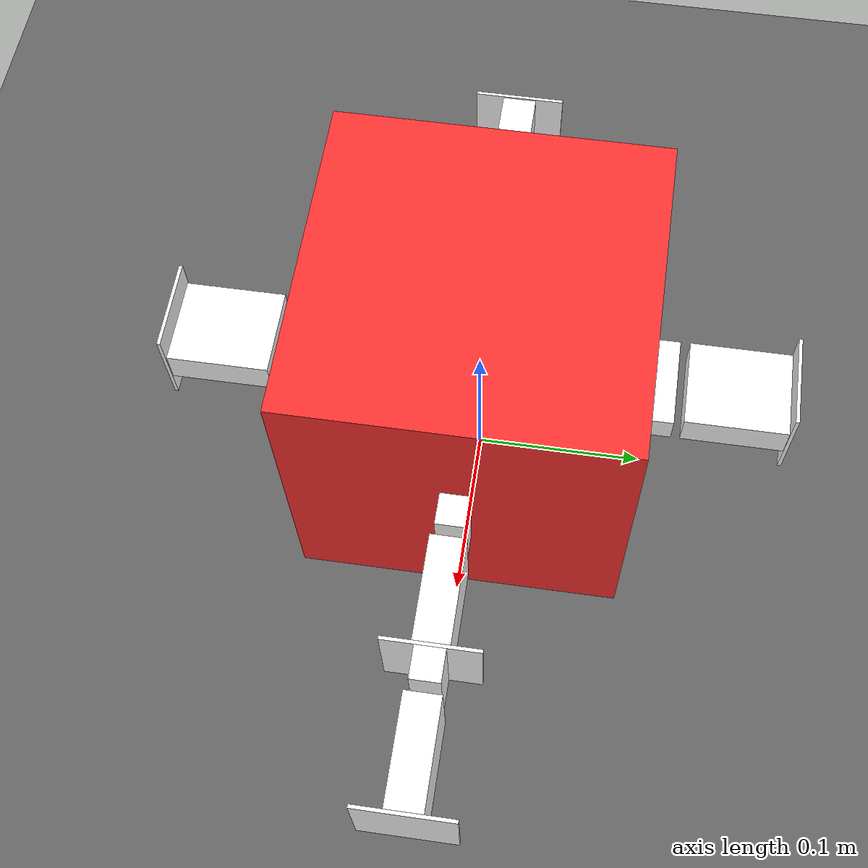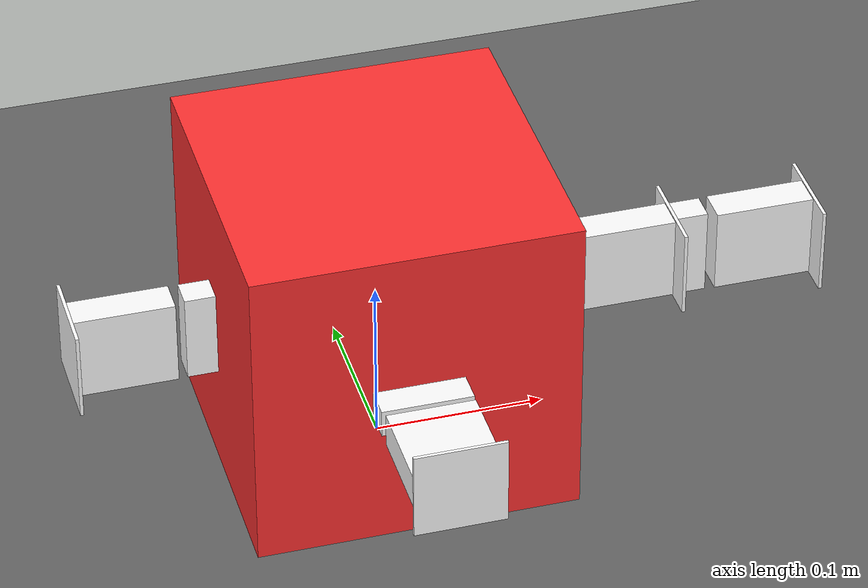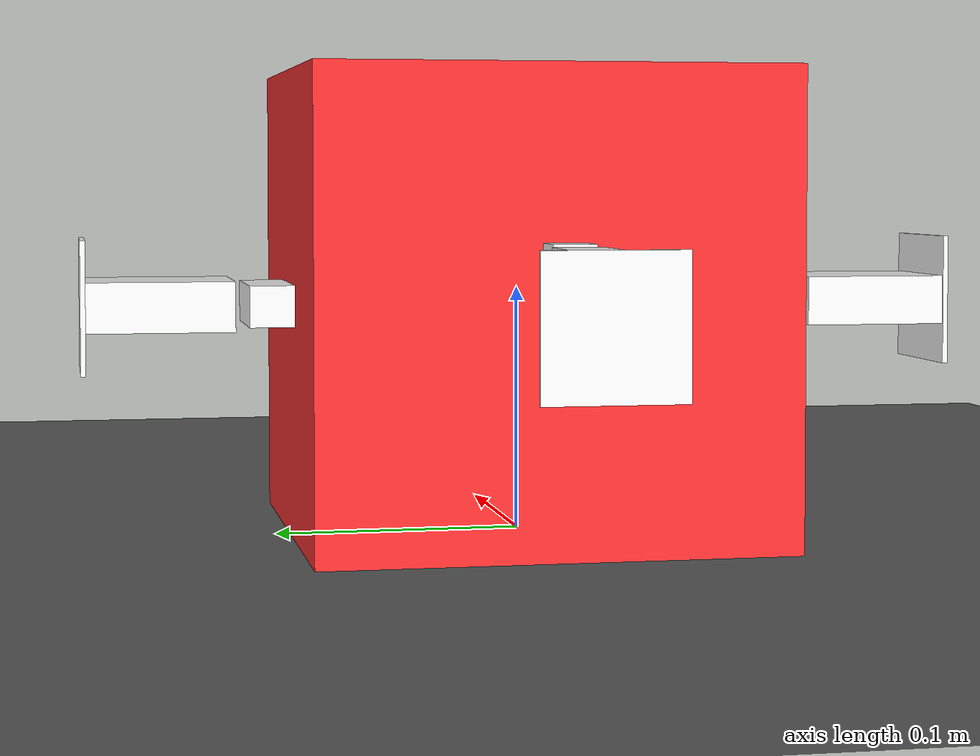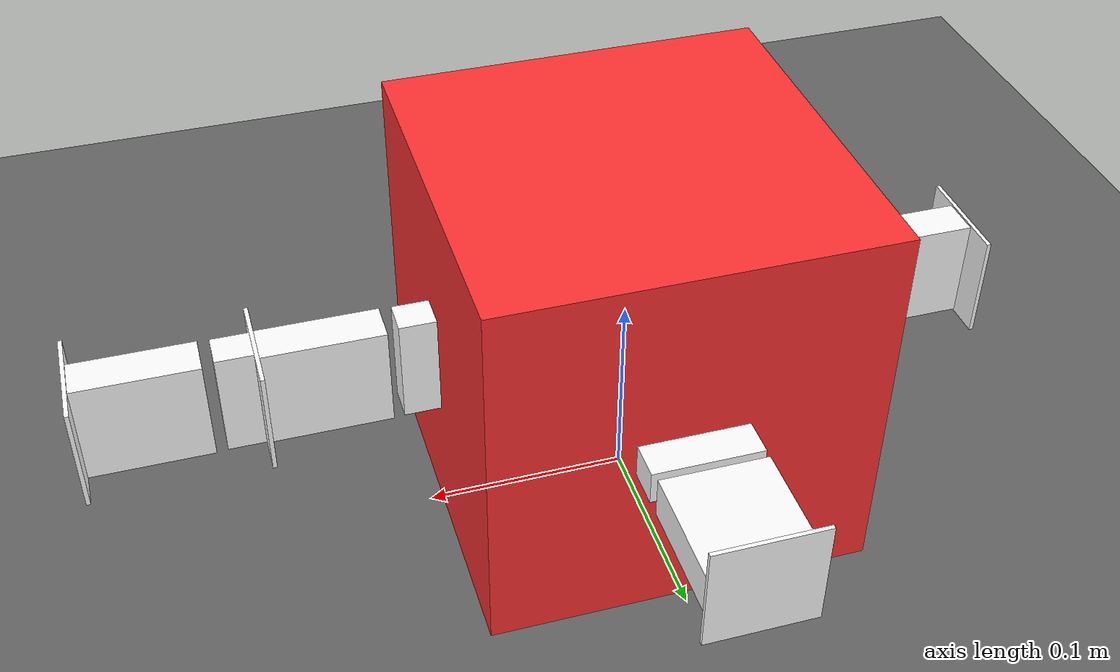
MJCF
<mujoco model="scene">
  <compiler angle="radian" autolimits="true"/>
  <option timestep="0.001" integrator="RK4"/>
  <visual>
    <headlight active="0"/>
  </visual>
  <statistic meansize="0.0646831" extent="2" center="0 0 0"/>
  <default class="main">
    <default class="/"/>
    <default class="mbs0/"/>
    <default class="mbs1/"/>
  </default>
  <asset>
    <material name="heightmap_0_material" class="/" rgba="0.392157 0.392157 0.392157 1"/>
    <material name="mbs1/geom_mbs1_geom0_material" class="mbs1/" rgba="1 0.196078 0.196078 1"/>
    <material name="mbs1/geom_mbs1_geom1_material" class="mbs1/"/>
    <material name="mbs1/geom_mbs1_geom2_material" class="mbs1/"/>
    <material name="mbs1/geom_mbs1_geom3_material" class="mbs1/"/>
    <material name="mbs1/geom_mbs1_geom4_material" class="mbs1/"/>
    <material name="mbs1/geom_mbs1_link0_geom0_material" class="mbs1/"/>
    <material name="mbs1/geom_mbs1_link0_geom1_material" class="mbs1/"/>
    <material name="mbs1/geom_mbs1_link1_geom0_material" class="mbs1/"/>
    <material name="mbs1/geom_mbs1_link1_geom1_material" class="mbs1/"/>
    <material name="mbs1/geom_mbs1_link1_geom2_material" class="mbs1/"/>
    <material name="mbs1/geom_mbs1_link1_link1_geom0_material" class="mbs1/"/>
    <material name="mbs1/geom_mbs1_link1_link1_geom1_material" class="mbs1/"/>
    <material name="mbs1/geom_mbs1_link2_geom0_material" class="mbs1/"/>
    <material name="mbs1/geom_mbs1_link2_geom1_material" class="mbs1/"/>
    <material name="mbs1/geom_mbs1_link3_geom0_material" class="mbs1/"/>
    <material name="mbs1/geom_mbs1_link3_geom1_material" class="mbs1/"/>
  </asset>
  <worldbody>
    <geom name="//unnamed_geom_0" class="/" size="10 10 1" quat="0 0 0 1" type="plane" material="heightmap_0_material"/>
    <light name="//unnamed_light_0" class="/" pos="0 0 100" dir="0 0 -1" directional="true" castshadow="false" ambient="0.5 0.5 0.5"/>
    <body name="mbs0/" quat="0 0 0 1"/>
    <body name="mbs1/" pos="0 0 0.0943294" quat="0 0 0 1">
      <joint name="mbs1/" type="free"/>
      <geom name="mbs1/mbs1_geom0" class="mbs1/" size="0.0943294 0.0943294 0.0943294" type="box" material="mbs1/geom_mbs1_geom0_material"/>
      <geom name="mbs1/mbs1_geom1" class="mbs1/" size="0.009 0.0265 0.00829455" pos="0.103329 0 0" quat="0.707107 0.707107 0 0" type="box" material="mbs1/geom_mbs1_geom1_material"/>
      <geom name="mbs1/mbs1_geom2" class="mbs1/" size="0.009 0.0265 0.00829455" pos="-0.103329 0 0" quat="0 0 0.707107 0.707107" type="box" material="mbs1/geom_mbs1_geom2_material"/>
      <geom name="mbs1/mbs1_geom3" class="mbs1/" size="0.009 0.0265 0.00829455" pos="0 0.103329 0" quat="0.707107 0 0 0.707107" type="box" material="mbs1/geom_mbs1_geom3_material"/>
      <geom name="mbs1/mbs1_geom4" class="mbs1/" size="0.009 0.0265 0.00829455" pos="0 -0.103329 0" quat="0.707107 0 0 -0.707107" type="box" material="mbs1/geom_mbs1_geom4_material"/>
      <site name="mbs1/mbs1_site_imu_0" class="mbs1/" pos="0 0 0" quat="0 0 0 1"/>
      <body name="mbs1/mbs1_link0" pos="0.128854 0 0" quat="0.707107 0.707107 0 0">
        <inertial pos="0.0270813 0 0" quat="0 0.707107 0 0.707107" mass="0.083" diaginertia="5.08392e-05 4.01022e-05 2.63078e-05"/>
        <joint name="mbs1/mbs1_joint0" class="mbs1/" pos="0 0 0" axis="0 1 0" range="-1.0472 1.0472" armature="0.002"/>
        <geom name="mbs1/mbs1_link0_geom0" class="mbs1/" size="0.02915 0.0256 0.01" pos="0.018 0 0" type="box" material="mbs1/geom_mbs1_link0_geom0_material"/>
        <geom name="mbs1/mbs1_link0_geom1" class="mbs1/" size="0.001 0.0265 0.0265" pos="0.04815 0 0" type="box" material="mbs1/geom_mbs1_link0_geom1_material"/>
      </body>
      <body name="mbs1/mbs1_link1" pos="-0.128854 0 0" quat="0 0 0.707107 0.707107">
        <inertial pos="0.0321864 0 0" quat="0 0.707107 0 0.707107" mass="0.09932" diaginertia="6.82647e-05 5.40817e-05 3.05023e-05"/>
        <joint name="mbs1/mbs1_joint1" class="mbs1/" pos="0 0 0" axis="0 1 0" range="-1.0472 1.0472" armature="0.002"/>
        <geom name="mbs1/mbs1_link1_geom0" class="mbs1/" size="0.02915 0.0256 0.01" pos="0.018 0 0" type="box" material="mbs1/geom_mbs1_link1_geom0_material"/>
        <geom name="mbs1/mbs1_link1_geom1" class="mbs1/" size="0.001 0.0265 0.0265" pos="0.04815 0 0" type="box" material="mbs1/geom_mbs1_link1_geom1_material"/>
        <geom name="mbs1/mbs1_link1_geom2" class="mbs1/" size="0.009 0.0265 0.00829455" pos="0.05815 0 0" type="box" material="mbs1/geom_mbs1_link1_geom2_material"/>
        <body name="mbs1/mbs1_link1_link1" pos="0.083675 0 0">
          <inertial pos="0.0270813 0 0" quat="0 0.707107 0 0.707107" mass="0.083" diaginertia="5.08392e-05 4.01022e-05 2.63078e-05"/>
          <joint name="mbs1/mbs1_link1_joint1" class="mbs1/" pos="0 0 0" axis="0 1 0" range="-1.0472 1.0472" armature="0.002"/>
          <geom name="mbs1/mbs1_link1_link1_geom0" class="mbs1/" size="0.02915 0.0256 0.01" pos="0.018 0 0" type="box" material="mbs1/geom_mbs1_link1_link1_geom0_material"/>
          <geom name="mbs1/mbs1_link1_link1_geom1" class="mbs1/" size="0.001 0.0265 0.0265" pos="0.04815 0 0" type="box" material="mbs1/geom_mbs1_link1_link1_geom1_material"/>
        </body>
      </body>
      <body name="mbs1/mbs1_link2" pos="0 0.128854 0" quat="0.707107 0 0 0.707107">
        <inertial pos="0.0270813 0 0" quat="0 0.707107 0 0.707107" mass="0.083" diaginertia="5.08392e-05 4.01022e-05 2.63078e-05"/>
        <joint name="mbs1/mbs1_joint2" class="mbs1/" pos="0 0 0" axis="0 1 0" range="-1.0472 1.0472" armature="0.002"/>
        <geom name="mbs1/mbs1_link2_geom0" class="mbs1/" size="0.02915 0.0256 0.01" pos="0.018 0 0" type="box" material="mbs1/geom_mbs1_link2_geom0_material"/>
        <geom name="mbs1/mbs1_link2_geom1" class="mbs1/" size="0.001 0.0265 0.0265" pos="0.04815 0 0" type="box" material="mbs1/geom_mbs1_link2_geom1_material"/>
      </body>
      <body name="mbs1/mbs1_link3" pos="0 -0.128854 0" quat="0.707107 0 0 -0.707107">
        <inertial pos="0.0270813 0 0" quat="0 0.707107 0 0.707107" mass="0.083" diaginertia="5.08392e-05 4.01022e-05 2.63078e-05"/>
        <joint name="mbs1/mbs1_joint3" class="mbs1/" pos="0 0 0" axis="0 1 0" range="-1.0472 1.0472" armature="0.002"/>
        <geom name="mbs1/mbs1_link3_geom0" class="mbs1/" size="0.02915 0.0256 0.01" pos="0.018 0 0" type="box" material="mbs1/geom_mbs1_link3_geom0_material"/>
        <geom name="mbs1/mbs1_link3_geom1" class="mbs1/" size="0.001 0.0265 0.0265" pos="0.04815 0 0" type="box" material="mbs1/geom_mbs1_link3_geom1_material"/>
      </body>
    </body>
  </worldbody>
  <actuator>
    <general name="mbs1/actuator_position_mbs1_joint0" class="mbs1/" joint="mbs1/mbs1_joint0" biastype="affine" gainprm="5 0 0 0 0 0 0 0 0 0" biasprm="0 -5 0 0 0 0 0 0 0 0"/>
    <general name="mbs1/actuator_velocity_mbs1_joint0" class="mbs1/" joint="mbs1/mbs1_joint0" biastype="affine" gainprm="0.05 0 0 0 0 0 0 0 0 0" biasprm="0 0 -0.05 0 0 0 0 0 0 0"/>
    <general name="mbs1/actuator_position_mbs1_joint1" class="mbs1/" joint="mbs1/mbs1_joint1" biastype="affine" gainprm="5 0 0 0 0 0 0 0 0 0" biasprm="0 -5 0 0 0 0 0 0 0 0"/>
    <general name="mbs1/actuator_velocity_mbs1_joint1" class="mbs1/" joint="mbs1/mbs1_joint1" biastype="affine" gainprm="0.05 0 0 0 0 0 0 0 0 0" biasprm="0 0 -0.05 0 0 0 0 0 0 0"/>
    <general name="mbs1/actuator_position_mbs1_link1_joint1" class="mbs1/" joint="mbs1/mbs1_link1_joint1" biastype="affine" gainprm="5 0 0 0 0 0 0 0 0 0" biasprm="0 -5 0 0 0 0 0 0 0 0"/>
    <general name="mbs1/actuator_velocity_mbs1_link1_joint1" class="mbs1/" joint="mbs1/mbs1_link1_joint1" biastype="affine" gainprm="0.05 0 0 0 0 0 0 0 0 0" biasprm="0 0 -0.05 0 0 0 0 0 0 0"/>
    <general name="mbs1/actuator_position_mbs1_joint2" class="mbs1/" joint="mbs1/mbs1_joint2" biastype="affine" gainprm="5 0 0 0 0 0 0 0 0 0" biasprm="0 -5 0 0 0 0 0 0 0 0"/>
    <general name="mbs1/actuator_velocity_mbs1_joint2" class="mbs1/" joint="mbs1/mbs1_joint2" biastype="affine" gainprm="0.05 0 0 0 0 0 0 0 0 0" biasprm="0 0 -0.05 0 0 0 0 0 0 0"/>
    <general name="mbs1/actuator_position_mbs1_joint3" class="mbs1/" joint="mbs1/mbs1_joint3" biastype="affine" gainprm="5 0 0 0 0 0 0 0 0 0" biasprm="0 -5 0 0 0 0 0 0 0 0"/>
    <general name="mbs1/actuator_velocity_mbs1_joint3" class="mbs1/" joint="mbs1/mbs1_joint3" biastype="affine" gainprm="0.05 0 0 0 0 0 0 0 0 0" biasprm="0 0 -0.05 0 0 0 0 0 0 0"/>
  </actuator>
  <sensor>
    <gyro site="mbs1/mbs1_site_imu_0" name="mbs1/imu_gyro_mbs1_0"/>
    <accelerometer site="mbs1/mbs1_site_imu_0" name="mbs1/imu_accelerometer_mbs1_0"/>
  </sensor>
</mujoco>
